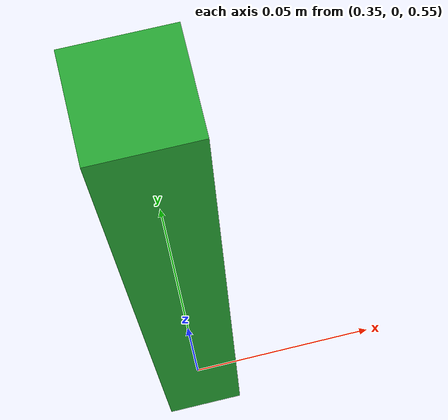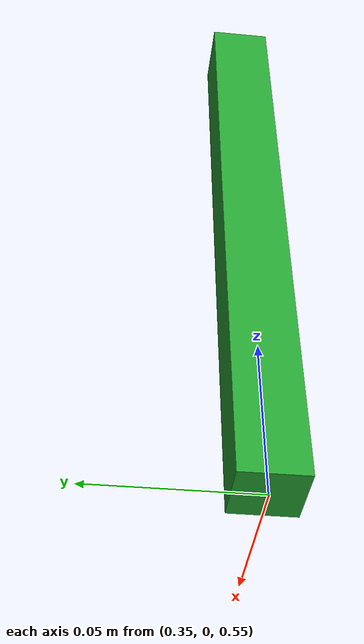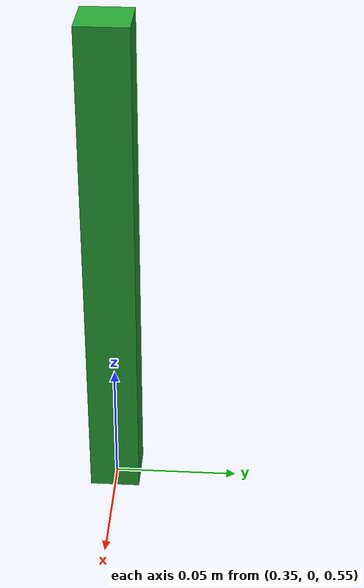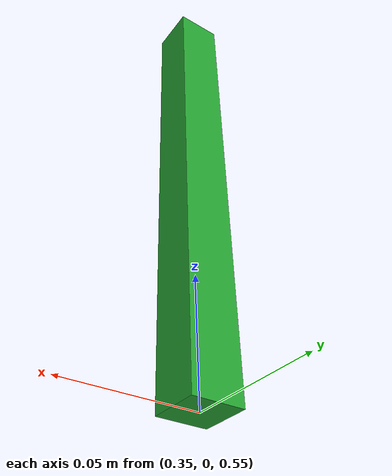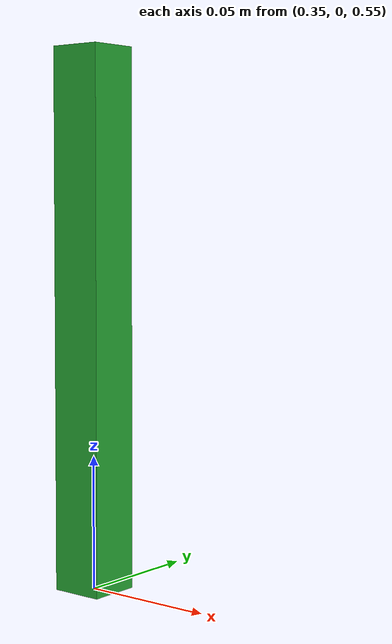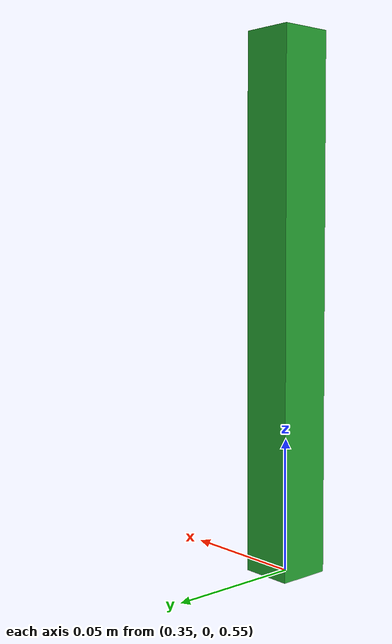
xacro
<robot name="object">
  <link name="object">
    <inertial>
      <origin xyz="0.35 0 0" />
      <mass value="1.0" />
      <inertia  ixx="1.0" ixy="0.0"  ixz="0.0"  iyy="1.0"  iyz="0.0"  izz="1.0" />
    </inertial>
    <visual>
      <!--origin xyz="0.7 0 0.5"/-->
      <origin xyz="0.35 0 0.65"/>
      <geometry>
        <box size="0.02 0.02 0.2" />
      </geometry>
    </visual>
    <collision>
      <origin xyz="0.35 0 0.65"/>
      <geometry>
        <box size="0.02 0.02 0.2" />
      </geometry>
    </collision>
  </link>
  <gazebo reference="object">
    <material>Gazebo/Green</material>
  </gazebo>
</robot>
